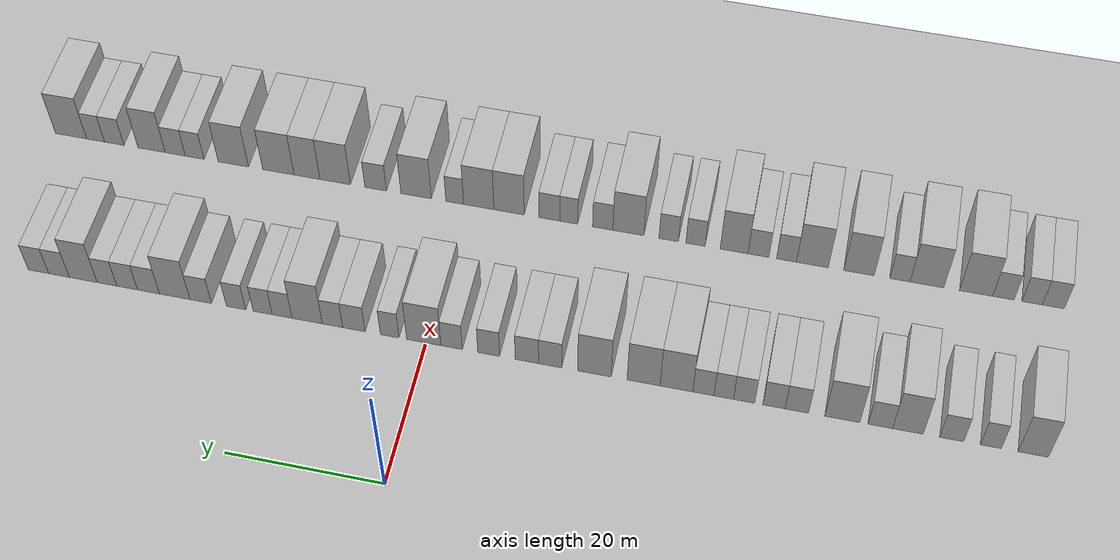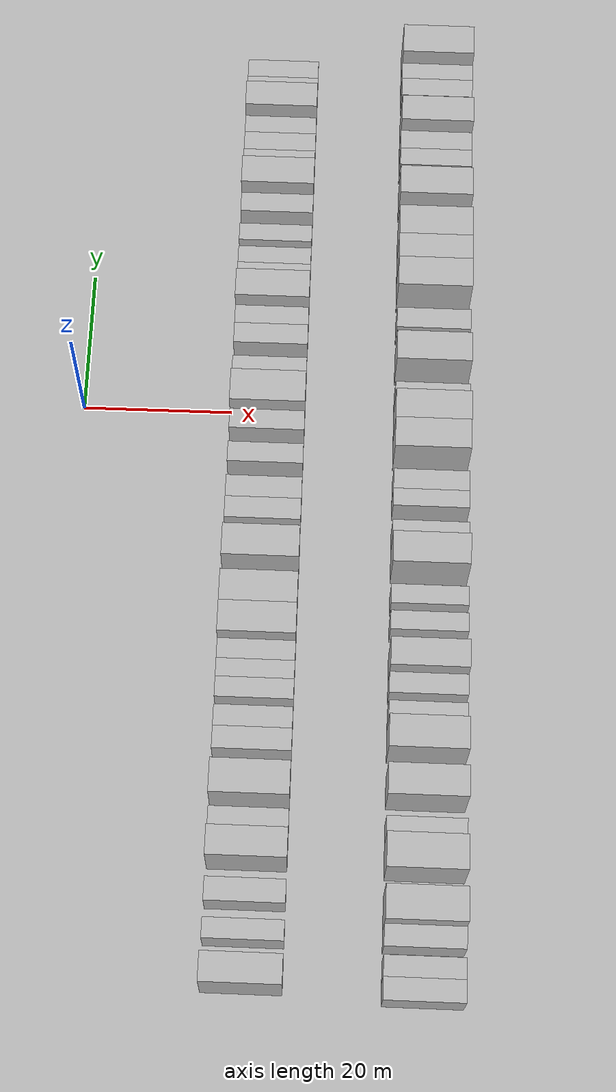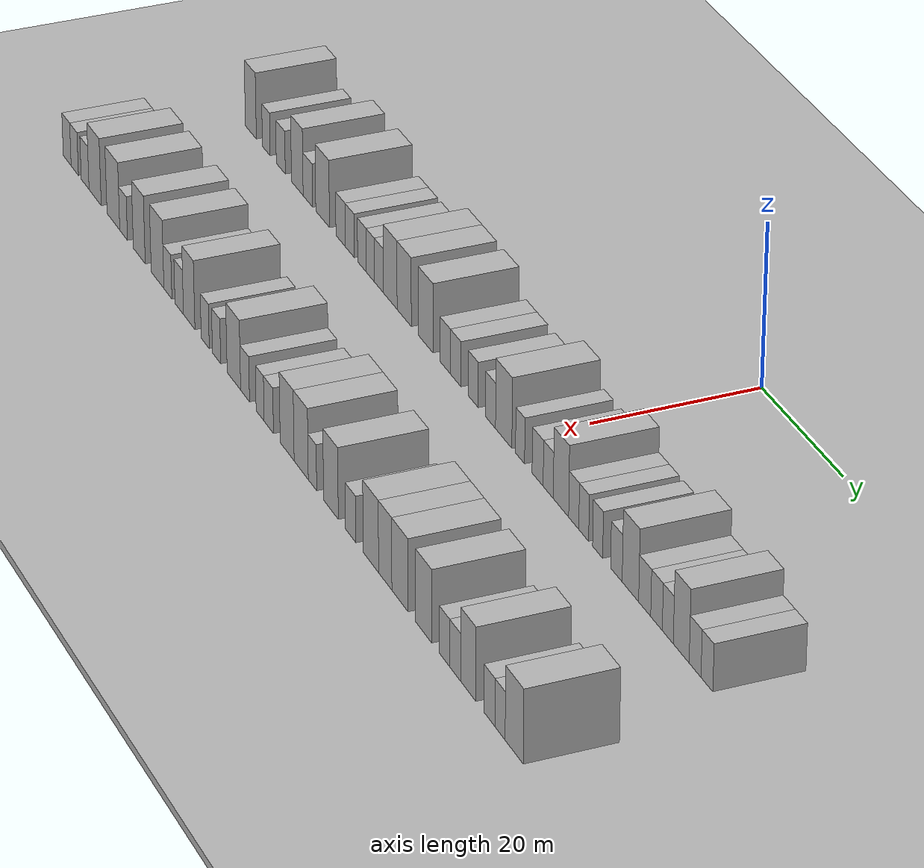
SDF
<sdf version="1.6">
 <world name="default">
  <include><name>ground_plane_1</name><uri>model://HANNAS_ground_plane</uri></include>
  <include>
   <name>ground_plane_2</name>
   <uri>model://HANNAS_ground_plane</uri>
   <pose>100 0 0  0 0 0</pose>
  </include>
  <model name="building_35">
   <static>1</static>
   <pose>25.0000 -75.6955 0 0.000000 0.000000 0.000000</pose>
   <link name="link">
    <pose>0 0 4.50 0 0 0</pose>
    <collision name="collision"><geometry><box><size>10.0000 3.6298 9.0000</size></box></geometry></collision>
    <visual name="visual">
     <cast_shadows>0</cast_shadows>
     <geometry><box><size>10.0000 3.6298 9.0000</size></box></geometry>
     <material>
      <script>
       <uri>model://HANNAS_wall/materials/scripts</uri>
       <uri>model://HANNAS_wall/materials/textures</uri>
       <name>vrc/HANNAS_wall</name>
      </script>
     </material>
    </visual>
   </link>
  </model>
  <model name="building_36">
   <static>1</static>
   <pose>25.0000 -70.6158 0 0.000000 0.000000 0.000000</pose>
   <link name="link">
    <pose>0 0 3.00 0 0 0</pose>
    <collision name="collision"><geometry><box><size>10.0000 2.5295 6.0000</size></box></geometry></collision>
    <visual name="visual">
     <cast_shadows>0</cast_shadows>
     <geometry><box><size>10.0000 2.5295 6.0000</size></box></geometry>
     <material>
      <script>
       <uri>model://HANNAS_wall/materials/scripts</uri>
       <uri>model://HANNAS_wall/materials/textures</uri>
       <name>vrc/HANNAS_wall</name>
      </script>
     </material>
    </visual>
   </link>
  </model>
  <model name="building_37">
   <static>1</static>
   <pose>25.0000 -65.8917 0 0.000000 0.000000 0.000000</pose>
   <link name="link">
    <pose>0 0 3.00 0 0 0</pose>
    <collision name="collision"><geometry><box><size>10.0000 2.9186 6.0000</size></box></geometry></collision>
    <visual name="visual">
     <cast_shadows>0</cast_shadows>
     <geometry><box><size>10.0000 2.9186 6.0000</size></box></geometry>
     <material>
      <script>
       <uri>model://HANNAS_wall/materials/scripts</uri>
       <uri>model://HANNAS_wall/materials/textures</uri>
       <name>vrc/HANNAS_wall</name>
      </script>
     </material>
    </visual>
   </link>
  </model>
  <model name="building_38">
   <static>1</static>
   <pose>25.0000 -60.5771 0 0.000000 0.000000 0.000000</pose>
   <link name="link">
    <pose>0 0 4.50 0 0 0</pose>
    <collision name="collision"><geometry><box><size>10.0000 3.7107 9.0000</size></box></geometry></collision>
    <visual name="visual">
     <cast_shadows>0</cast_shadows>
     <geometry><box><size>10.0000 3.7107 9.0000</size></box></geometry>
     <material>
      <script>
       <uri>model://HANNAS_wall/materials/scripts</uri>
       <uri>model://HANNAS_wall/materials/textures</uri>
       <name>vrc/HANNAS_wall</name>
      </script>
     </material>
    </visual>
   </link>
  </model>
  <model name="building_39">
   <static>1</static>
   <pose>25.0000 -57.2219 0 0.000000 0.000000 0.000000</pose>
   <link name="link">
    <pose>0 0 3.00 0 0 0</pose>
    <collision name="collision"><geometry><box><size>10.0000 2.9997 6.0000</size></box></geometry></collision>
    <visual name="visual">
     <cast_shadows>0</cast_shadows>
     <geometry><box><size>10.0000 2.9997 6.0000</size></box></geometry>
     <material>
      <script>
       <uri>model://HANNAS_wall/materials/scripts</uri>
       <uri>model://HANNAS_wall/materials/textures</uri>
       <name>vrc/HANNAS_wall</name>
      </script>
     </material>
    </visual>
   </link>
  </model>
  <model name="building_40">
   <static>1</static>
   <pose>25.0000 -52.5726 0 0.000000 0.000000 0.000000</pose>
   <link name="link">
    <pose>0 0 4.50 0 0 0</pose>
    <collision name="collision"><geometry><box><size>10.0000 4.2988 9.0000</size></box></geometry></collision>
    <visual name="visual">
     <cast_shadows>0</cast_shadows>
     <geometry><box><size>10.0000 4.2988 9.0000</size></box></geometry>
     <material>
      <script>
       <uri>model://HANNAS_wall/materials/scripts</uri>
       <uri>model://HANNAS_wall/materials/textures</uri>
       <name>vrc/HANNAS_wall</name>
      </script>
     </material>
    </visual>
   </link>
  </model>
  <model name="building_41">
   <static>1</static>
   <pose>25.0000 -46.9709 0 0.000000 0.000000 0.000000</pose>
   <link name="link">
    <pose>0 0 3.00 0 0 0</pose>
    <collision name="collision"><geometry><box><size>10.0000 2.9047 6.0000</size></box></geometry></collision>
    <visual name="visual">
     <cast_shadows>0</cast_shadows>
     <geometry><box><size>10.0000 2.9047 6.0000</size></box></geometry>
     <material>
      <script>
       <uri>model://HANNAS_wall/materials/scripts</uri>
       <uri>model://HANNAS_wall/materials/textures</uri>
       <name>vrc/HANNAS_wall</name>
      </script>
     </material>
    </visual>
   </link>
  </model>
  <model name="building_42">
   <static>1</static>
   <pose>25.0000 -44.1402 0 0.000000 0.000000 0.000000</pose>
   <link name="link">
    <pose>0 0 3.00 0 0 0</pose>
    <collision name="collision"><geometry><box><size>10.0000 2.7567 6.0000</size></box></geometry></collision>
    <visual name="visual">
     <cast_shadows>0</cast_shadows>
     <geometry><box><size>10.0000 2.7567 6.0000</size></box></geometry>
     <material>
      <script>
       <uri>model://HANNAS_wall/materials/scripts</uri>
       <uri>model://HANNAS_wall/materials/textures</uri>
       <name>vrc/HANNAS_wall</name>
      </script>
     </material>
    </visual>
   </link>
  </model>
  <model name="building_43">
   <static>1</static>
   <pose>25.0000 -40.4365 0 0.000000 0.000000 0.000000</pose>
   <link name="link">
    <pose>0 0 3.00 0 0 0</pose>
    <collision name="collision"><geometry><box><size>10.0000 2.6507 6.0000</size></box></geometry></collision>
    <visual name="visual">
     <cast_shadows>0</cast_shadows>
     <geometry><box><size>10.0000 2.6507 6.0000</size></box></geometry>
     <material>
      <script>
       <uri>model://HANNAS_wall/materials/scripts</uri>
       <uri>model://HANNAS_wall/materials/textures</uri>
       <name>vrc/HANNAS_wall</name>
      </script>
     </material>
    </visual>
   </link>
  </model>
  <model name="building_44">
   <static>1</static>
   <pose>25.0000 -37.9015 0 0.000000 0.000000 0.000000</pose>
   <link name="link">
    <pose>0 0 3.00 0 0 0</pose>
    <collision name="collision"><geometry><box><size>10.0000 2.4193 6.0000</size></box></geometry></collision>
    <visual name="visual">
     <cast_shadows>0</cast_shadows>
     <geometry><box><size>10.0000 2.4193 6.0000</size></box></geometry>
     <material>
      <script>
       <uri>model://HANNAS_wall/materials/scripts</uri>
       <uri>model://HANNAS_wall/materials/textures</uri>
       <name>vrc/HANNAS_wall</name>
      </script>
     </material>
    </visual>
   </link>
  </model>
  <model name="building_45">
   <static>1</static>
   <pose>25.0000 -35.3691 0 0.000000 0.000000 0.000000</pose>
   <link name="link">
    <pose>0 0 3.00 0 0 0</pose>
    <collision name="collision"><geometry><box><size>10.0000 2.6455 6.0000</size></box></geometry></collision>
    <visual name="visual">
     <cast_shadows>0</cast_shadows>
     <geometry><box><size>10.0000 2.6455 6.0000</size></box></geometry>
     <material>
      <script>
       <uri>model://HANNAS_wall/materials/scripts</uri>
       <uri>model://HANNAS_wall/materials/textures</uri>
       <name>vrc/HANNAS_wall</name>
      </script>
     </material>
    </visual>
   </link>
  </model>
  <model name="building_46">
   <static>1</static>
   <pose>25.0000 -31.9945 0 0.000000 0.000000 0.000000</pose>
   <link name="link">
    <pose>0 0 4.50 0 0 0</pose>
    <collision name="collision"><geometry><box><size>10.0000 4.1037 9.0000</size></box></geometry></collision>
    <visual name="visual">
     <cast_shadows>0</cast_shadows>
     <geometry><box><size>10.0000 4.1037 9.0000</size></box></geometry>
     <material>
      <script>
       <uri>model://HANNAS_wall/materials/scripts</uri>
       <uri>model://HANNAS_wall/materials/textures</uri>
       <name>vrc/HANNAS_wall</name>
      </script>
     </material>
    </visual>
   </link>
  </model>
  <model name="building_47">
   <static>1</static>
   <pose>25.0000 -27.8611 0 0.000000 0.000000 0.000000</pose>
   <link name="link">
    <pose>0 0 4.50 0 0 0</pose>
    <collision name="collision"><geometry><box><size>10.0000 4.1633 9.0000</size></box></geometry></collision>
    <visual name="visual">
     <cast_shadows>0</cast_shadows>
     <geometry><box><size>10.0000 4.1633 9.0000</size></box></geometry>
     <material>
      <script>
       <uri>model://HANNAS_wall/materials/scripts</uri>
       <uri>model://HANNAS_wall/materials/textures</uri>
       <name>vrc/HANNAS_wall</name>
      </script>
     </material>
    </visual>
   </link>
  </model>
  <model name="building_48">
   <static>1</static>
   <pose>25.0000 -21.6405 0 0.000000 0.000000 0.000000</pose>
   <link name="link">
    <pose>0 0 4.50 0 0 0</pose>
    <collision name="collision"><geometry><box><size>10.0000 4.2778 9.0000</size></box></geometry></collision>
    <visual name="visual">
     <cast_shadows>0</cast_shadows>
     <geometry><box><size>10.0000 4.2778 9.0000</size></box></geometry>
     <material>
      <script>
       <uri>model://HANNAS_wall/materials/scripts</uri>
       <uri>model://HANNAS_wall/materials/textures</uri>
       <name>vrc/HANNAS_wall</name>
      </script>
     </material>
    </visual>
   </link>
  </model>
  <model name="building_49">
   <static>1</static>
   <pose>25.0000 -16.0252 0 0.000000 0.000000 0.000000</pose>
   <link name="link">
    <pose>0 0 3.00 0 0 0</pose>
    <collision name="collision"><geometry><box><size>10.0000 2.9528 6.0000</size></box></geometry></collision>
    <visual name="visual">
     <cast_shadows>0</cast_shadows>
     <geometry><box><size>10.0000 2.9528 6.0000</size></box></geometry>
     <material>
      <script>
       <uri>model://HANNAS_wall/materials/scripts</uri>
       <uri>model://HANNAS_wall/materials/textures</uri>
       <name>vrc/HANNAS_wall</name>
      </script>
     </material>
    </visual>
   </link>
  </model>
  <model name="building_50">
   <static>1</static>
   <pose>25.0000 -13.0524 0 0.000000 0.000000 0.000000</pose>
   <link name="link">
    <pose>0 0 3.00 0 0 0</pose>
    <collision name="collision"><geometry><box><size>10.0000 2.9929 6.0000</size></box></geometry></collision>
    <visual name="visual">
     <cast_shadows>0</cast_shadows>
     <geometry><box><size>10.0000 2.9929 6.0000</size></box></geometry>
     <material>
      <script>
       <uri>model://HANNAS_wall/materials/scripts</uri>
       <uri>model://HANNAS_wall/materials/textures</uri>
       <name>vrc/HANNAS_wall</name>
      </script>
     </material>
    </visual>
   </link>
  </model>
  <model name="building_51">
   <static>1</static>
   <pose>25.0000 -8.1540 0 0.000000 0.000000 0.000000</pose>
   <link name="link">
    <pose>0 0 3.00 0 0 0</pose>
    <collision name="collision"><geometry><box><size>10.0000 2.8040 6.0000</size></box></geometry></collision>
    <visual name="visual">
     <cast_shadows>0</cast_shadows>
     <geometry><box><size>10.0000 2.8040 6.0000</size></box></geometry>
     <material>
      <script>
       <uri>model://HANNAS_wall/materials/scripts</uri>
       <uri>model://HANNAS_wall/materials/textures</uri>
       <name>vrc/HANNAS_wall</name>
      </script>
     </material>
    </visual>
   </link>
  </model>
  <model name="building_52">
   <static>1</static>
   <pose>25.0000 -3.3668 0 0.000000 0.000000 0.000000</pose>
   <link name="link">
    <pose>0 0 3.00 0 0 0</pose>
    <collision name="collision"><geometry><box><size>10.0000 2.7705 6.0000</size></box></geometry></collision>
    <visual name="visual">
     <cast_shadows>0</cast_shadows>
     <geometry><box><size>10.0000 2.7705 6.0000</size></box></geometry>
     <material>
      <script>
       <uri>model://HANNAS_wall/materials/scripts</uri>
       <uri>model://HANNAS_wall/materials/textures</uri>
       <name>vrc/HANNAS_wall</name>
      </script>
     </material>
    </visual>
   </link>
  </model>
  <model name="building_53">
   <static>1</static>
   <pose>25.0000 0.2383 0 0.000000 0.000000 0.000000</pose>
   <link name="link">
    <pose>0 0 4.50 0 0 0</pose>
    <collision name="collision"><geometry><box><size>10.0000 4.4397 9.0000</size></box></geometry></collision>
    <visual name="visual">
     <cast_shadows>0</cast_shadows>
     <geometry><box><size>10.0000 4.4397 9.0000</size></box></geometry>
     <material>
      <script>
       <uri>model://HANNAS_wall/materials/scripts</uri>
       <uri>model://HANNAS_wall/materials/textures</uri>
       <name>vrc/HANNAS_wall</name>
      </script>
     </material>
    </visual>
   </link>
  </model>
  <model name="building_54">
   <static>1</static>
   <pose>25.0000 4.6681 0 0.000000 0.000000 0.000000</pose>
   <link name="link">
    <pose>0 0 3.00 0 0 0</pose>
    <collision name="collision"><geometry><box><size>10.0000 2.4198 6.0000</size></box></geometry></collision>
    <visual name="visual">
     <cast_shadows>0</cast_shadows>
     <geometry><box><size>10.0000 2.4198 6.0000</size></box></geometry>
     <material>
      <script>
       <uri>model://HANNAS_wall/materials/scripts</uri>
       <uri>model://HANNAS_wall/materials/textures</uri>
       <name>vrc/HANNAS_wall</name>
      </script>
     </material>
    </visual>
   </link>
  </model>
  <model name="building_55">
   <static>1</static>
   <pose>25.0000 9.3480 0 0.000000 0.000000 0.000000</pose>
   <link name="link">
    <pose>0 0 3.00 0 0 0</pose>
    <collision name="collision"><geometry><box><size>10.0000 2.9400 6.0000</size></box></geometry></collision>
    <visual name="visual">
     <cast_shadows>0</cast_shadows>
     <geometry><box><size>10.0000 2.9400 6.0000</size></box></geometry>
     <material>
      <script>
       <uri>model://HANNAS_wall/materials/scripts</uri>
       <uri>model://HANNAS_wall/materials/textures</uri>
       <name>vrc/HANNAS_wall</name>
      </script>
     </material>
    </visual>
   </link>
  </model>
  <model name="building_56">
   <static>1</static>
   <pose>25.0000 12.1555 0 0.000000 0.000000 0.000000</pose>
   <link name="link">
    <pose>0 0 3.00 0 0 0</pose>
    <collision name="collision"><geometry><box><size>10.0000 2.6751 6.0000</size></box></geometry></collision>
    <visual name="visual">
     <cast_shadows>0</cast_shadows>
     <geometry><box><size>10.0000 2.6751 6.0000</size></box></geometry>
     <material>
      <script>
       <uri>model://HANNAS_wall/materials/scripts</uri>
       <uri>model://HANNAS_wall/materials/textures</uri>
       <name>vrc/HANNAS_wall</name>
      </script>
     </material>
    </visual>
   </link>
  </model>
  <model name="building_57">
   <static>1</static>
   <pose>25.0000 15.4903 0 0.000000 0.000000 0.000000</pose>
   <link name="link">
    <pose>0 0 4.50 0 0 0</pose>
    <collision name="collision"><geometry><box><size>10.0000 3.9945 9.0000</size></box></geometry></collision>
    <visual name="visual">
     <cast_shadows>0</cast_shadows>
     <geometry><box><size>10.0000 3.9945 9.0000</size></box></geometry>
     <material>
      <script>
       <uri>model://HANNAS_wall/materials/scripts</uri>
       <uri>model://HANNAS_wall/materials/textures</uri>
       <name>vrc/HANNAS_wall</name>
      </script>
     </material>
    </visual>
   </link>
  </model>
  <model name="building_58">
   <static>1</static>
   <pose>25.0000 18.8014 0 0.000000 0.000000 0.000000</pose>
   <link name="link">
    <pose>0 0 3.00 0 0 0</pose>
    <collision name="collision"><geometry><box><size>10.0000 2.6277 6.0000</size></box></geometry></collision>
    <visual name="visual">
     <cast_shadows>0</cast_shadows>
     <geometry><box><size>10.0000 2.6277 6.0000</size></box></geometry>
     <material>
      <script>
       <uri>model://HANNAS_wall/materials/scripts</uri>
       <uri>model://HANNAS_wall/materials/textures</uri>
       <name>vrc/HANNAS_wall</name>
      </script>
     </material>
    </visual>
   </link>
  </model>
  <model name="building_59">
   <static>1</static>
   <pose>25.0000 21.3725 0 0.000000 0.000000 0.000000</pose>
   <link name="link">
    <pose>0 0 3.00 0 0 0</pose>
    <collision name="collision"><geometry><box><size>10.0000 2.5146 6.0000</size></box></geometry></collision>
    <visual name="visual">
     <cast_shadows>0</cast_shadows>
     <geometry><box><size>10.0000 2.5146 6.0000</size></box></geometry>
     <material>
      <script>
       <uri>model://HANNAS_wall/materials/scripts</uri>
       <uri>model://HANNAS_wall/materials/textures</uri>
       <name>vrc/HANNAS_wall</name>
      </script>
     </material>
    </visual>
   </link>
  </model>
  <model name="building_60">
   <static>1</static>
   <pose>25.0000 24.9138 0 0.000000 0.000000 0.000000</pose>
   <link name="link">
    <pose>0 0 3.00 0 0 0</pose>
    <collision name="collision"><geometry><box><size>10.0000 2.5680 6.0000</size></box></geometry></collision>
    <visual name="visual">
     <cast_shadows>0</cast_shadows>
     <geometry><box><size>10.0000 2.5680 6.0000</size></box></geometry>
     <material>
      <script>
       <uri>model://HANNAS_wall/materials/scripts</uri>
       <uri>model://HANNAS_wall/materials/textures</uri>
       <name>vrc/HANNAS_wall</name>
      </script>
     </material>
    </visual>
   </link>
  </model>
  <model name="building_61">
   <static>1</static>
   <pose>25.0000 29.6432 0 0.000000 0.000000 0.000000</pose>
   <link name="link">
    <pose>0 0 3.00 0 0 0</pose>
    <collision name="collision"><geometry><box><size>10.0000 2.8909 6.0000</size></box></geometry></collision>
    <visual name="visual">
     <cast_shadows>0</cast_shadows>
     <geometry><box><size>10.0000 2.8909 6.0000</size></box></geometry>
     <material>
      <script>
       <uri>model://HANNAS_wall/materials/scripts</uri>
       <uri>model://HANNAS_wall/materials/textures</uri>
       <name>vrc/HANNAS_wall</name>
      </script>
     </material>
    </visual>
   </link>
  </model>
  <model name="building_62">
   <static>1</static>
   <pose>25.0000 33.1300 0 0.000000 0.000000 0.000000</pose>
   <link name="link">
    <pose>0 0 4.50 0 0 0</pose>
    <collision name="collision"><geometry><box><size>10.0000 4.0826 9.0000</size></box></geometry></collision>
    <visual name="visual">
     <cast_shadows>0</cast_shadows>
     <geometry><box><size>10.0000 4.0826 9.0000</size></box></geometry>
     <material>
      <script>
       <uri>model://HANNAS_wall/materials/scripts</uri>
       <uri>model://HANNAS_wall/materials/textures</uri>
       <name>vrc/HANNAS_wall</name>
      </script>
     </material>
    </visual>
   </link>
  </model>
  <model name="building_63">
   <static>1</static>
   <pose>25.0000 36.6509 0 0.000000 0.000000 0.000000</pose>
   <link name="link">
    <pose>0 0 3.00 0 0 0</pose>
    <collision name="collision"><geometry><box><size>10.0000 2.9591 6.0000</size></box></geometry></collision>
    <visual name="visual">
     <cast_shadows>0</cast_shadows>
     <geometry><box><size>10.0000 2.9591 6.0000</size></box></geometry>
     <material>
      <script>
       <uri>model://HANNAS_wall/materials/scripts</uri>
       <uri>model://HANNAS_wall/materials/textures</uri>
       <name>vrc/HANNAS_wall</name>
      </script>
     </material>
    </visual>
   </link>
  </model>
  <model name="building_64">
   <static>1</static>
   <pose>25.0000 39.5377 0 0.000000 0.000000 0.000000</pose>
   <link name="link">
    <pose>0 0 3.00 0 0 0</pose>
    <collision name="collision"><geometry><box><size>10.0000 2.8145 6.0000</size></box></geometry></collision>
    <visual name="visual">
     <cast_shadows>0</cast_shadows>
     <geometry><box><size>10.0000 2.8145 6.0000</size></box></geometry>
     <material>
      <script>
       <uri>model://HANNAS_wall/materials/scripts</uri>
       <uri>model://HANNAS_wall/materials/textures</uri>
       <name>vrc/HANNAS_wall</name>
      </script>
     </material>
    </visual>
   </link>
  </model>
  <model name="building_65">
   <static>1</static>
   <pose>25.0000 42.2709 0 0.000000 0.000000 0.000000</pose>
   <link name="link">
    <pose>0 0 3.00 0 0 0</pose>
    <collision name="collision"><geometry><box><size>10.0000 2.6519 6.0000</size></box></geometry></collision>
    <visual name="visual">
     <cast_shadows>0</cast_shadows>
     <geometry><box><size>10.0000 2.6519 6.0000</size></box></geometry>
     <material>
      <script>
       <uri>model://HANNAS_wall/materials/scripts</uri>
       <uri>model://HANNAS_wall/materials/textures</uri>
       <name>vrc/HANNAS_wall</name>
      </script>
     </material>
    </visual>
   </link>
  </model>
  <model name="building_66">
   <static>1</static>
   <pose>25.0000 45.4951 0 0.000000 0.000000 0.000000</pose>
   <link name="link">
    <pose>0 0 4.50 0 0 0</pose>
    <collision name="collision"><geometry><box><size>10.0000 3.7966 9.0000</size></box></geometry></collision>
    <visual name="visual">
     <cast_shadows>0</cast_shadows>
     <geometry><box><size>10.0000 3.7966 9.0000</size></box></geometry>
     <material>
      <script>
       <uri>model://HANNAS_wall/materials/scripts</uri>
       <uri>model://HANNAS_wall/materials/textures</uri>
       <name>vrc/HANNAS_wall</name>
      </script>
     </material>
    </visual>
   </link>
  </model>
  <model name="building_67">
   <static>1</static>
   <pose>25.0000 48.7970 0 0.000000 0.000000 0.000000</pose>
   <link name="link">
    <pose>0 0 3.00 0 0 0</pose>
    <collision name="collision"><geometry><box><size>10.0000 2.8072 6.0000</size></box></geometry></collision>
    <visual name="visual">
     <cast_shadows>0</cast_shadows>
     <geometry><box><size>10.0000 2.8072 6.0000</size></box></geometry>
     <material>
      <script>
       <uri>model://HANNAS_wall/materials/scripts</uri>
       <uri>model://HANNAS_wall/materials/textures</uri>
       <name>vrc/HANNAS_wall</name>
      </script>
     </material>
    </visual>
   </link>
  </model>
  <model name="building_68">
   <static>1</static>
   <pose>25.0000 51.5891 0 0.000000 0.000000 0.000000</pose>
   <link name="link">
    <pose>0 0 3.00 0 0 0</pose>
    <collision name="collision"><geometry><box><size>10.0000 2.7771 6.0000</size></box></geometry></collision>
    <visual name="visual">
     <cast_shadows>0</cast_shadows>
     <geometry><box><size>10.0000 2.7771 6.0000</size></box></geometry>
     <material>
      <script>
       <uri>model://HANNAS_wall/materials/scripts</uri>
       <uri>model://HANNAS_wall/materials/textures</uri>
       <name>vrc/HANNAS_wall</name>
      </script>
     </material>
    </visual>
   </link>
  </model>
  <model name="building_133">
   <static>1</static>
   <pose>47.0000 -76.9502 0 0.000000 0.000000 0.000000</pose>
   <link name="link">
    <pose>0 0 3.00 0 0 0</pose>
    <collision name="collision"><geometry><box><size>10.0000 2.7717 6.0000</size></box></geometry></collision>
    <visual name="visual">
     <cast_shadows>0</cast_shadows>
     <geometry><box><size>10.0000 2.7717 6.0000</size></box></geometry>
     <material>
      <script>
       <uri>model://HANNAS_wall/materials/scripts</uri>
       <uri>model://HANNAS_wall/materials/textures</uri>
       <name>vrc/HANNAS_wall</name>
      </script>
     </material>
    </visual>
   </link>
  </model>
  <model name="building_134">
   <static>1</static>
   <pose>47.0000 -74.2717 0 0.000000 0.000000 0.000000</pose>
   <link name="link">
    <pose>0 0 3.00 0 0 0</pose>
    <collision name="collision"><geometry><box><size>10.0000 2.5854 6.0000</size></box></geometry></collision>
    <visual name="visual">
     <cast_shadows>0</cast_shadows>
     <geometry><box><size>10.0000 2.5854 6.0000</size></box></geometry>
     <material>
      <script>
       <uri>model://HANNAS_wall/materials/scripts</uri>
       <uri>model://HANNAS_wall/materials/textures</uri>
       <name>vrc/HANNAS_wall</name>
      </script>
     </material>
    </visual>
   </link>
  </model>
  <model name="building_135">
   <static>1</static>
   <pose>47.0000 -70.6216 0 0.000000 0.000000 0.000000</pose>
   <link name="link">
    <pose>0 0 3.00 0 0 0</pose>
    <collision name="collision"><geometry><box><size>10.0000 2.7148 6.0000</size></box></geometry></collision>
    <visual name="visual">
     <cast_shadows>0</cast_shadows>
     <geometry><box><size>10.0000 2.7148 6.0000</size></box></geometry>
     <material>
      <script>
       <uri>model://HANNAS_wall/materials/scripts</uri>
       <uri>model://HANNAS_wall/materials/textures</uri>
       <name>vrc/HANNAS_wall</name>
      </script>
     </material>
    </visual>
   </link>
  </model>
  <model name="building_136">
   <static>1</static>
   <pose>47.0000 -67.1503 0 0.000000 0.000000 0.000000</pose>
   <link name="link">
    <pose>0 0 4.50 0 0 0</pose>
    <collision name="collision"><geometry><box><size>10.0000 4.2277 9.0000</size></box></geometry></collision>
    <visual name="visual">
     <cast_shadows>0</cast_shadows>
     <geometry><box><size>10.0000 4.2277 9.0000</size></box></geometry>
     <material>
      <script>
       <uri>model://HANNAS_wall/materials/scripts</uri>
       <uri>model://HANNAS_wall/materials/textures</uri>
       <name>vrc/HANNAS_wall</name>
      </script>
     </material>
    </visual>
   </link>
  </model>
  <model name="building_137">
   <static>1</static>
   <pose>47.0000 -60.8649 0 0.000000 0.000000 0.000000</pose>
   <link name="link">
    <pose>0 0 4.50 0 0 0</pose>
    <collision name="collision"><geometry><box><size>10.0000 4.3432 9.0000</size></box></geometry></collision>
    <visual name="visual">
     <cast_shadows>0</cast_shadows>
     <geometry><box><size>10.0000 4.3432 9.0000</size></box></geometry>
     <material>
      <script>
       <uri>model://HANNAS_wall/materials/scripts</uri>
       <uri>model://HANNAS_wall/materials/textures</uri>
       <name>vrc/HANNAS_wall</name>
      </script>
     </material>
    </visual>
   </link>
  </model>
  <model name="building_138">
   <static>1</static>
   <pose>47.0000 -57.3902 0 0.000000 0.000000 0.000000</pose>
   <link name="link">
    <pose>0 0 3.00 0 0 0</pose>
    <collision name="collision"><geometry><box><size>10.0000 2.6061 6.0000</size></box></geometry></collision>
    <visual name="visual">
     <cast_shadows>0</cast_shadows>
     <geometry><box><size>10.0000 2.6061 6.0000</size></box></geometry>
     <material>
      <script>
       <uri>model://HANNAS_wall/materials/scripts</uri>
       <uri>model://HANNAS_wall/materials/textures</uri>
       <name>vrc/HANNAS_wall</name>
      </script>
     </material>
    </visual>
   </link>
  </model>
  <model name="building_139">
   <static>1</static>
   <pose>47.0000 -52.1106 0 0.000000 0.000000 0.000000</pose>
   <link name="link">
    <pose>0 0 4.50 0 0 0</pose>
    <collision name="collision"><geometry><box><size>10.0000 3.9531 9.0000</size></box></geometry></collision>
    <visual name="visual">
     <cast_shadows>0</cast_shadows>
     <geometry><box><size>10.0000 3.9531 9.0000</size></box></geometry>
     <material>
      <script>
       <uri>model://HANNAS_wall/materials/scripts</uri>
       <uri>model://HANNAS_wall/materials/textures</uri>
       <name>vrc/HANNAS_wall</name>
      </script>
     </material>
    </visual>
   </link>
  </model>
  <model name="building_140">
   <static>1</static>
   <pose>47.0000 -46.0599 0 0.000000 0.000000 0.000000</pose>
   <link name="link">
    <pose>0 0 4.50 0 0 0</pose>
    <collision name="collision"><geometry><box><size>10.0000 4.1483 9.0000</size></box></geometry></collision>
    <visual name="visual">
     <cast_shadows>0</cast_shadows>
     <geometry><box><size>10.0000 4.1483 9.0000</size></box></geometry>
     <material>
      <script>
       <uri>model://HANNAS_wall/materials/scripts</uri>
       <uri>model://HANNAS_wall/materials/textures</uri>
       <name>vrc/HANNAS_wall</name>
      </script>
     </material>
    </visual>
   </link>
  </model>
  <model name="building_141">
   <static>1</static>
   <pose>47.0000 -42.6857 0 0.000000 0.000000 0.000000</pose>
   <link name="link">
    <pose>0 0 3.00 0 0 0</pose>
    <collision name="collision"><geometry><box><size>10.0000 2.6003 6.0000</size></box></geometry></collision>
    <visual name="visual">
     <cast_shadows>0</cast_shadows>
     <geometry><box><size>10.0000 2.6003 6.0000</size></box></geometry>
     <material>
      <script>
       <uri>model://HANNAS_wall/materials/scripts</uri>
       <uri>model://HANNAS_wall/materials/textures</uri>
       <name>vrc/HANNAS_wall</name>
      </script>
     </material>
    </visual>
   </link>
  </model>
  <model name="building_142">
   <static>1</static>
   <pose>47.0000 -39.0146 0 0.000000 0.000000 0.000000</pose>
   <link name="link">
    <pose>0 0 3.00 0 0 0</pose>
    <collision name="collision"><geometry><box><size>10.0000 2.7419 6.0000</size></box></geometry></collision>
    <visual name="visual">
     <cast_shadows>0</cast_shadows>
     <geometry><box><size>10.0000 2.7419 6.0000</size></box></geometry>
     <material>
      <script>
       <uri>model://HANNAS_wall/materials/scripts</uri>
       <uri>model://HANNAS_wall/materials/textures</uri>
       <name>vrc/HANNAS_wall</name>
      </script>
     </material>
    </visual>
   </link>
  </model>
  <model name="building_143">
   <static>1</static>
   <pose>47.0000 -35.8150 0 0.000000 0.000000 0.000000</pose>
   <link name="link">
    <pose>0 0 4.50 0 0 0</pose>
    <collision name="collision"><geometry><box><size>10.0000 3.6572 9.0000</size></box></geometry></collision>
    <visual name="visual">
     <cast_shadows>0</cast_shadows>
     <geometry><box><size>10.0000 3.6572 9.0000</size></box></geometry>
     <material>
      <script>
       <uri>model://HANNAS_wall/materials/scripts</uri>
       <uri>model://HANNAS_wall/materials/textures</uri>
       <name>vrc/HANNAS_wall</name>
      </script>
     </material>
    </visual>
   </link>
  </model>
  <model name="building_144">
   <static>1</static>
   <pose>47.0000 -30.7193 0 0.000000 0.000000 0.000000</pose>
   <link name="link">
    <pose>0 0 3.00 0 0 0</pose>
    <collision name="collision"><geometry><box><size>10.0000 2.5341 6.0000</size></box></geometry></collision>
    <visual name="visual">
     <cast_shadows>0</cast_shadows>
     <geometry><box><size>10.0000 2.5341 6.0000</size></box></geometry>
     <material>
      <script>
       <uri>model://HANNAS_wall/materials/scripts</uri>
       <uri>model://HANNAS_wall/materials/textures</uri>
       <name>vrc/HANNAS_wall</name>
      </script>
     </material>
    </visual>
   </link>
  </model>
  <model name="building_145">
   <static>1</static>
   <pose>47.0000 -27.1624 0 0.000000 0.000000 0.000000</pose>
   <link name="link">
    <pose>0 0 3.00 0 0 0</pose>
    <collision name="collision"><geometry><box><size>10.0000 2.5798 6.0000</size></box></geometry></collision>
    <visual name="visual">
     <cast_shadows>0</cast_shadows>
     <geometry><box><size>10.0000 2.5798 6.0000</size></box></geometry>
     <material>
      <script>
       <uri>model://HANNAS_wall/materials/scripts</uri>
       <uri>model://HANNAS_wall/materials/textures</uri>
       <name>vrc/HANNAS_wall</name>
      </script>
     </material>
    </visual>
   </link>
  </model>
  <model name="building_146">
   <static>1</static>
   <pose>47.0000 -21.7948 0 0.000000 0.000000 0.000000</pose>
   <link name="link">
    <pose>0 0 4.50 0 0 0</pose>
    <collision name="collision"><geometry><box><size>10.0000 4.1553 9.0000</size></box></geometry></collision>
    <visual name="visual">
     <cast_shadows>0</cast_shadows>
     <geometry><box><size>10.0000 4.1553 9.0000</size></box></geometry>
     <material>
      <script>
       <uri>model://HANNAS_wall/materials/scripts</uri>
       <uri>model://HANNAS_wall/materials/textures</uri>
       <name>vrc/HANNAS_wall</name>
      </script>
     </material>
    </visual>
   </link>
  </model>
  <model name="building_147">
   <static>1</static>
   <pose>47.0000 -18.3642 0 0.000000 0.000000 0.000000</pose>
   <link name="link">
    <pose>0 0 3.00 0 0 0</pose>
    <collision name="collision"><geometry><box><size>10.0000 2.7061 6.0000</size></box></geometry></collision>
    <visual name="visual">
     <cast_shadows>0</cast_shadows>
     <geometry><box><size>10.0000 2.7061 6.0000</size></box></geometry>
     <material>
      <script>
       <uri>model://HANNAS_wall/materials/scripts</uri>
       <uri>model://HANNAS_wall/materials/textures</uri>
       <name>vrc/HANNAS_wall</name>
      </script>
     </material>
    </visual>
   </link>
  </model>
  <model name="building_148">
   <static>1</static>
   <pose>47.0000 -13.7999 0 0.000000 0.000000 0.000000</pose>
   <link name="link">
    <pose>0 0 3.00 0 0 0</pose>
    <collision name="collision"><geometry><box><size>10.0000 2.4225 6.0000</size></box></geometry></collision>
    <visual name="visual">
     <cast_shadows>0</cast_shadows>
     <geometry><box><size>10.0000 2.4225 6.0000</size></box></geometry>
     <material>
      <script>
       <uri>model://HANNAS_wall/materials/scripts</uri>
       <uri>model://HANNAS_wall/materials/textures</uri>
       <name>vrc/HANNAS_wall</name>
      </script>
     </material>
    </visual>
   </link>
  </model>
  <model name="building_149">
   <static>1</static>
   <pose>47.0000 -11.1950 0 0.000000 0.000000 0.000000</pose>
   <link name="link">
    <pose>0 0 3.00 0 0 0</pose>
    <collision name="collision"><geometry><box><size>10.0000 2.7873 6.0000</size></box></geometry></collision>
    <visual name="visual">
     <cast_shadows>0</cast_shadows>
     <geometry><box><size>10.0000 2.7873 6.0000</size></box></geometry>
     <material>
      <script>
       <uri>model://HANNAS_wall/materials/scripts</uri>
       <uri>model://HANNAS_wall/materials/textures</uri>
       <name>vrc/HANNAS_wall</name>
      </script>
     </material>
    </visual>
   </link>
  </model>
  <model name="building_150">
   <static>1</static>
   <pose>47.0000 -5.7440 0 0.000000 0.000000 0.000000</pose>
   <link name="link">
    <pose>0 0 4.50 0 0 0</pose>
    <collision name="collision"><geometry><box><size>10.0000 4.1146 9.0000</size></box></geometry></collision>
    <visual name="visual">
     <cast_shadows>0</cast_shadows>
     <geometry><box><size>10.0000 4.1146 9.0000</size></box></geometry>
     <material>
      <script>
       <uri>model://HANNAS_wall/materials/scripts</uri>
       <uri>model://HANNAS_wall/materials/textures</uri>
       <name>vrc/HANNAS_wall</name>
      </script>
     </material>
    </visual>
   </link>
  </model>
  <model name="building_151">
   <static>1</static>
   <pose>47.0000 -1.6255 0 0.000000 0.000000 0.000000</pose>
   <link name="link">
    <pose>0 0 4.50 0 0 0</pose>
    <collision name="collision"><geometry><box><size>10.0000 4.1225 9.0000</size></box></geometry></collision>
    <visual name="visual">
     <cast_shadows>0</cast_shadows>
     <geometry><box><size>10.0000 4.1225 9.0000</size></box></geometry>
     <material>
      <script>
       <uri>model://HANNAS_wall/materials/scripts</uri>
       <uri>model://HANNAS_wall/materials/textures</uri>
       <name>vrc/HANNAS_wall</name>
      </script>
     </material>
    </visual>
   </link>
  </model>
  <model name="building_152">
   <static>1</static>
   <pose>47.0000 1.6438 0 0.000000 0.000000 0.000000</pose>
   <link name="link">
    <pose>0 0 3.00 0 0 0</pose>
    <collision name="collision"><geometry><box><size>10.0000 2.4160 6.0000</size></box></geometry></collision>
    <visual name="visual">
     <cast_shadows>0</cast_shadows>
     <geometry><box><size>10.0000 2.4160 6.0000</size></box></geometry>
     <material>
      <script>
       <uri>model://HANNAS_wall/materials/scripts</uri>
       <uri>model://HANNAS_wall/materials/textures</uri>
       <name>vrc/HANNAS_wall</name>
      </script>
     </material>
    </visual>
   </link>
  </model>
  <model name="building_153">
   <static>1</static>
   <pose>47.0000 6.9389 0 0.000000 0.000000 0.000000</pose>
   <link name="link">
    <pose>0 0 4.50 0 0 0</pose>
    <collision name="collision"><geometry><box><size>10.0000 4.1741 9.0000</size></box></geometry></collision>
    <visual name="visual">
     <cast_shadows>0</cast_shadows>
     <geometry><box><size>10.0000 4.1741 9.0000</size></box></geometry>
     <material>
      <script>
       <uri>model://HANNAS_wall/materials/scripts</uri>
       <uri>model://HANNAS_wall/materials/textures</uri>
       <name>vrc/HANNAS_wall</name>
      </script>
     </material>
    </visual>
   </link>
  </model>
  <model name="building_154">
   <static>1</static>
   <pose>47.0000 12.5090 0 0.000000 0.000000 0.000000</pose>
   <link name="link">
    <pose>0 0 3.00 0 0 0</pose>
    <collision name="collision"><geometry><box><size>10.0000 2.9661 6.0000</size></box></geometry></collision>
    <visual name="visual">
     <cast_shadows>0</cast_shadows>
     <geometry><box><size>10.0000 2.9661 6.0000</size></box></geometry>
     <material>
      <script>
       <uri>model://HANNAS_wall/materials/scripts</uri>
       <uri>model://HANNAS_wall/materials/textures</uri>
       <name>vrc/HANNAS_wall</name>
      </script>
     </material>
    </visual>
   </link>
  </model>
  <model name="building_155">
   <static>1</static>
   <pose>47.0000 18.1170 0 0.000000 0.000000 0.000000</pose>
   <link name="link">
    <pose>0 0 4.50 0 0 0</pose>
    <collision name="collision"><geometry><box><size>10.0000 4.2500 9.0000</size></box></geometry></collision>
    <visual name="visual">
     <cast_shadows>0</cast_shadows>
     <geometry><box><size>10.0000 4.2500 9.0000</size></box></geometry>
     <material>
      <script>
       <uri>model://HANNAS_wall/materials/scripts</uri>
       <uri>model://HANNAS_wall/materials/textures</uri>
       <name>vrc/HANNAS_wall</name>
      </script>
     </material>
    </visual>
   </link>
  </model>
  <model name="building_156">
   <static>1</static>
   <pose>47.0000 22.0473 0 0.000000 0.000000 0.000000</pose>
   <link name="link">
    <pose>0 0 4.50 0 0 0</pose>
    <collision name="collision"><geometry><box><size>10.0000 3.6105 9.0000</size></box></geometry></collision>
    <visual name="visual">
     <cast_shadows>0</cast_shadows>
     <geometry><box><size>10.0000 3.6105 9.0000</size></box></geometry>
     <material>
      <script>
       <uri>model://HANNAS_wall/materials/scripts</uri>
       <uri>model://HANNAS_wall/materials/textures</uri>
       <name>vrc/HANNAS_wall</name>
      </script>
     </material>
    </visual>
   </link>
  </model>
  <model name="building_157">
   <static>1</static>
   <pose>47.0000 26.0442 0 0.000000 0.000000 0.000000</pose>
   <link name="link">
    <pose>0 0 4.50 0 0 0</pose>
    <collision name="collision"><geometry><box><size>10.0000 4.3832 9.0000</size></box></geometry></collision>
    <visual name="visual">
     <cast_shadows>0</cast_shadows>
     <geometry><box><size>10.0000 4.3832 9.0000</size></box></geometry>
     <material>
      <script>
       <uri>model://HANNAS_wall/materials/scripts</uri>
       <uri>model://HANNAS_wall/materials/textures</uri>
       <name>vrc/HANNAS_wall</name>
      </script>
     </material>
    </visual>
   </link>
  </model>
  <model name="building_158">
   <static>1</static>
   <pose>47.0000 32.3680 0 0.000000 0.000000 0.000000</pose>
   <link name="link">
    <pose>0 0 4.50 0 0 0</pose>
    <collision name="collision"><geometry><box><size>10.0000 4.2644 9.0000</size></box></geometry></collision>
    <visual name="visual">
     <cast_shadows>0</cast_shadows>
     <geometry><box><size>10.0000 4.2644 9.0000</size></box></geometry>
     <material>
      <script>
       <uri>model://HANNAS_wall/materials/scripts</uri>
       <uri>model://HANNAS_wall/materials/textures</uri>
       <name>vrc/HANNAS_wall</name>
      </script>
     </material>
    </visual>
   </link>
  </model>
  <model name="building_159">
   <static>1</static>
   <pose>47.0000 37.8305 0 0.000000 0.000000 0.000000</pose>
   <link name="link">
    <pose>0 0 3.00 0 0 0</pose>
    <collision name="collision"><geometry><box><size>10.0000 2.6606 6.0000</size></box></geometry></collision>
    <visual name="visual">
     <cast_shadows>0</cast_shadows>
     <geometry><box><size>10.0000 2.6606 6.0000</size></box></geometry>
     <material>
      <script>
       <uri>model://HANNAS_wall/materials/scripts</uri>
       <uri>model://HANNAS_wall/materials/textures</uri>
       <name>vrc/HANNAS_wall</name>
      </script>
     </material>
    </visual>
   </link>
  </model>
  <model name="building_160">
   <static>1</static>
   <pose>47.0000 40.5865 0 0.000000 0.000000 0.000000</pose>
   <link name="link">
    <pose>0 0 3.00 0 0 0</pose>
    <collision name="collision"><geometry><box><size>10.0000 2.8515 6.0000</size></box></geometry></collision>
    <visual name="visual">
     <cast_shadows>0</cast_shadows>
     <geometry><box><size>10.0000 2.8515 6.0000</size></box></geometry>
     <material>
      <script>
       <uri>model://HANNAS_wall/materials/scripts</uri>
       <uri>model://HANNAS_wall/materials/textures</uri>
       <name>vrc/HANNAS_wall</name>
      </script>
     </material>
    </visual>
   </link>
  </model>
  <model name="building_161">
   <static>1</static>
   <pose>47.0000 43.9577 0 0.000000 0.000000 0.000000</pose>
   <link name="link">
    <pose>0 0 4.50 0 0 0</pose>
    <collision name="collision"><geometry><box><size>10.0000 3.8908 9.0000</size></box></geometry></collision>
    <visual name="visual">
     <cast_shadows>0</cast_shadows>
     <geometry><box><size>10.0000 3.8908 9.0000</size></box></geometry>
     <material>
      <script>
       <uri>model://HANNAS_wall/materials/scripts</uri>
       <uri>model://HANNAS_wall/materials/textures</uri>
       <name>vrc/HANNAS_wall</name>
      </script>
     </material>
    </visual>
   </link>
  </model>
  <model name="building_162">
   <static>1</static>
   <pose>47.0000 49.3100 0 0.000000 0.000000 0.000000</pose>
   <link name="link">
    <pose>0 0 3.00 0 0 0</pose>
    <collision name="collision"><geometry><box><size>10.0000 2.8138 6.0000</size></box></geometry></collision>
    <visual name="visual">
     <cast_shadows>0</cast_shadows>
     <geometry><box><size>10.0000 2.8138 6.0000</size></box></geometry>
     <material>
      <script>
       <uri>model://HANNAS_wall/materials/scripts</uri>
       <uri>model://HANNAS_wall/materials/textures</uri>
       <name>vrc/HANNAS_wall</name>
      </script>
     </material>
    </visual>
   </link>
  </model>
  <model name="building_163">
   <static>1</static>
   <pose>47.0000 51.9866 0 0.000000 0.000000 0.000000</pose>
   <link name="link">
    <pose>0 0 3.00 0 0 0</pose>
    <collision name="collision"><geometry><box><size>10.0000 2.5394 6.0000</size></box></geometry></collision>
    <visual name="visual">
     <cast_shadows>0</cast_shadows>
     <geometry><box><size>10.0000 2.5394 6.0000</size></box></geometry>
     <material>
      <script>
       <uri>model://HANNAS_wall/materials/scripts</uri>
       <uri>model://HANNAS_wall/materials/textures</uri>
       <name>vrc/HANNAS_wall</name>
      </script>
     </material>
    </visual>
   </link>
  </model>
  <model name="building_164">
   <static>1</static>
   <pose>47.0000 55.4965 0 0.000000 0.000000 0.000000</pose>
   <link name="link">
    <pose>0 0 4.50 0 0 0</pose>
    <collision name="collision"><geometry><box><size>10.0000 4.4806 9.0000</size></box></geometry></collision>
    <visual name="visual">
     <cast_shadows>0</cast_shadows>
     <geometry><box><size>10.0000 4.4806 9.0000</size></box></geometry>
     <material>
      <script>
       <uri>model://HANNAS_wall/materials/scripts</uri>
       <uri>model://HANNAS_wall/materials/textures</uri>
       <name>vrc/HANNAS_wall</name>
      </script>
     </material>
    </visual>
   </link>
  </model>
 </world>
</sdf>
